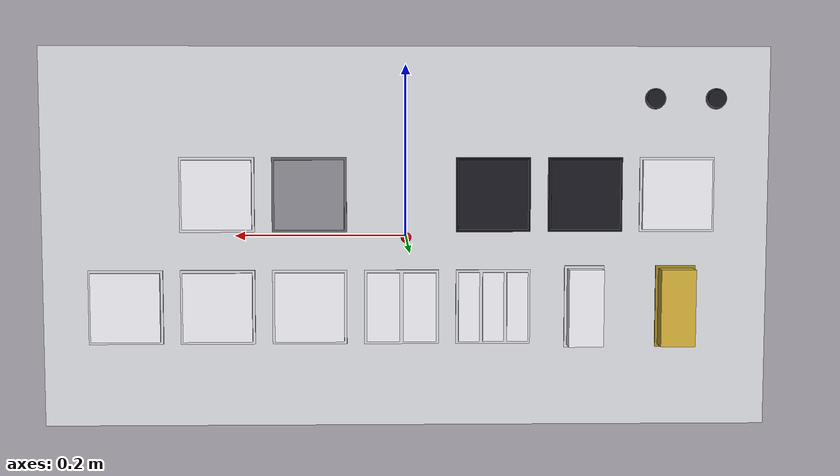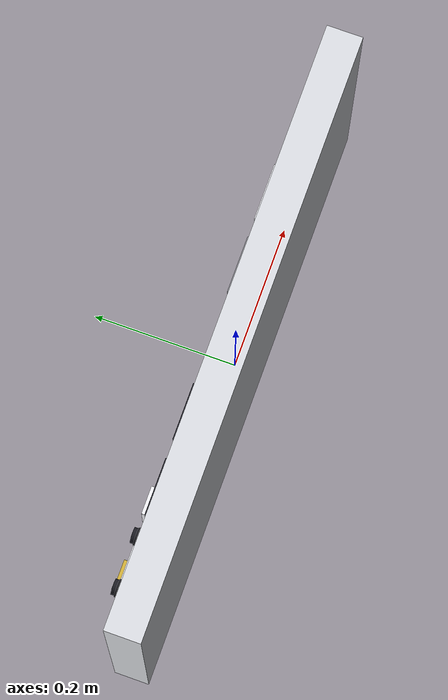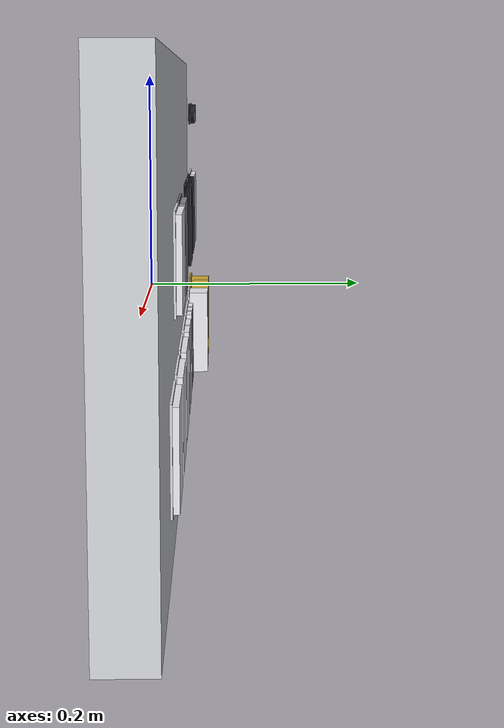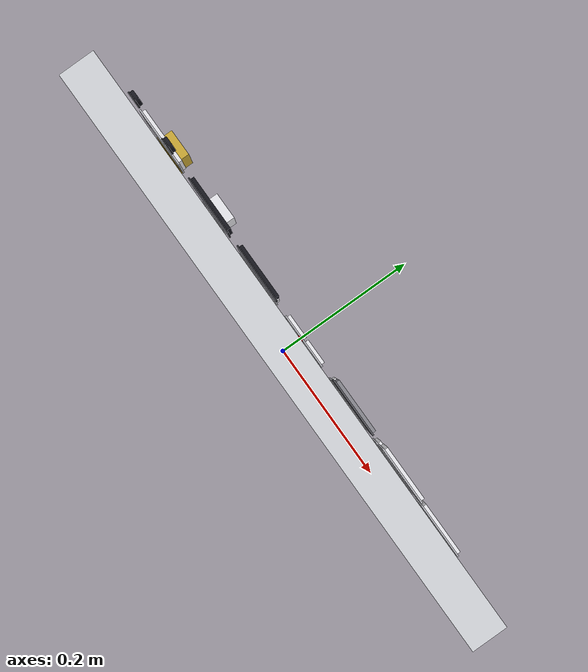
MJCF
<?xml version='1.0' encoding='utf-8'?>
<mujoco model="w2_b1_panel_base">
  <asset>
    <material name="Knob_Quantity1_02_base" rgba="0.05 0.05 0.07 1" specular="0.7" shininess="0.8" />
    <material name="Knob_Quantity1_02_button" rgba="0.10 0.10 0.13 1" specular="0.7" shininess="0.8" />
    <material name="Knob_Quantity1_01_base" rgba="0.05 0.05 0.07 1" specular="0.7" shininess="0.8" />
    <material name="Knob_Quantity1_01_button" rgba="0.10 0.10 0.13 1" specular="0.7" shininess="0.8" />
    <material name="Toogle_Quantity1_01_bezel" rgba="0.85 0.85 0.88 1" specular="0.85" shininess="0.9" />
    <material name="Toogle_Quantity1_01_button" rgba="0.95 0.95 0.97 1" specular="0.85" shininess="0.9" />
    <material name="Toogle_Quantity1_02_bezel" rgba="0.40 0.40 0.43 1" specular="0.85" shininess="0.9" />
    <material name="Toogle_Quantity1_02_button" rgba="0.55 0.55 0.58 1" specular="0.85" shininess="0.9" />
    <material name="Toogle_Quantity1_03_bezel" rgba="0.05 0.05 0.07 1" specular="0.7" shininess="0.8" />
    <material name="Toogle_Quantity1_03_button" rgba="0.10 0.10 0.13 1" specular="0.7" shininess="0.8" />
    <material name="Toogle_Quantity3_01_bezel" rgba="0.05 0.05 0.07 1" specular="0.7" shininess="0.8" />
    <material name="Toogle_Quantity3_01_button" rgba="0.10 0.10 0.13 1" specular="0.7" shininess="0.8" />
    <material name="Switch_Quantity3_03_bezel" rgba="0.85 0.85 0.88 1" specular="0.85" shininess="0.9" />
    <material name="Switch_Quantity3_03_button" rgba="0.95 0.95 0.97 1" specular="0.85" shininess="0.9" />
    <material name="Switch_Quantity1_01_bezel" rgba="0.85 0.85 0.88 1" specular="0.85" shininess="0.9" />
    <material name="Switch_Quantity1_01_button" rgba="0.95 0.95 0.97 1" specular="0.85" shininess="0.9" />
    <material name="Switch_Quantity4_01_bezel" rgba="0.85 0.85 0.88 1" specular="0.85" shininess="0.9" />
    <material name="Switch_Quantity4_01_button" rgba="0.95 0.95 0.97 1" specular="0.85" shininess="0.9" />
    <material name="Switch_Quantity1_03_bezel" rgba="0.85 0.85 0.88 1" specular="0.85" shininess="0.9" />
    <material name="Switch_Quantity1_03_button" rgba="0.95 0.95 0.97 1" specular="0.85" shininess="0.9" />
    <material name="Switch_Quantity2_02_bezel" rgba="0.85 0.85 0.88 1" specular="0.85" shininess="0.9" />
    <material name="Switch_Quantity2_02_btn1" rgba="0.95 0.95 0.97 1" specular="0.85" shininess="0.9" />
    <material name="Switch_Quantity2_02_btn2" rgba="0.95 0.95 0.97 1" specular="0.85" shininess="0.9" />
    <material name="Switch_Quantity3_02_bezel" rgba="0.85 0.85 0.88 1" specular="0.85" shininess="0.9" />
    <material name="Switch_Quantity3_02_btn1" rgba="0.95 0.95 0.97 1" specular="0.85" shininess="0.9" />
    <material name="Switch_Quantity3_02_btn2" rgba="0.95 0.95 0.97 1" specular="0.85" shininess="0.9" />
    <material name="Switch_Quantity3_02_btn3" rgba="0.95 0.95 0.97 1" specular="0.85" shininess="0.9" />
    <material name="Switch_Quantity1_05_bezel" rgba="0.85 0.85 0.88 1" specular="0.85" shininess="0.9" />
    <material name="Switch_Quantity1_05_button" rgba="0.95 0.95 0.97 1" specular="0.85" shininess="0.9" />
    <material name="Switch_Quantity1_04_bezel" rgba="0.65 0.53 0.15 1" specular="0.9" shininess="0.95" />
    <material name="Switch_Quantity1_04_button" rgba="0.83 0.69 0.22 1" specular="0.9" shininess="0.95" />
  </asset>
  <worldbody>
    <body name="panel_mount" pos="0 0 0">
      <geom name="panel_backplate" type="box" pos="0 0 0" size="0.42 0.025 0.22" rgba="0.86 0.87 0.89 1" contype="1" conaffinity="1" />
      <site name="panel_origin" pos="0 0.025 0" size="0.006" rgba="1 0 0 1" />
      <body name="panel_slot_r1_c10" pos="-0.28650000000000003 0.03 0.16" quat="0.7071068 -0.7071068 0 0">
        <body name="Knob_Quantity1_02_r1_c10">
          <geom name="Knob_Quantity1_02_base__panel_slot_r1_c10" type="cylinder" pos="0 0 0.001" size="0.012 0.001" material="Knob_Quantity1_02_base" />
          <geom name="Knob_Quantity1_02_button__panel_slot_r1_c10" type="cylinder" pos="0 0 0.0035" size="0.0105 0.0035" material="Knob_Quantity1_02_button" />
        </body>
      </body>
      <body name="panel_slot_r1_c11" pos="-0.3565 0.03 0.16" quat="0.7071068 -0.7071068 0 0">
        <body name="Knob_Quantity1_01_r1_c11">
          <geom name="Knob_Quantity1_01_base__panel_slot_r1_c11" type="cylinder" pos="0 0 0.001" size="0.012 0.001" material="Knob_Quantity1_01_base" />
          <geom name="Knob_Quantity1_01_button__panel_slot_r1_c11" type="cylinder" pos="0 0 0.0035" size="0.0105 0.0035" material="Knob_Quantity1_01_button" />
        </body>
      </body>
      <body name="panel_slot_r2_c2" pos="0.2175 0.03 0.05" quat="0.7071068 -0.7071068 0 0">
        <body name="Toogle_Quantity1_01_r2_c2">
          <geom name="Toogle_Quantity1_01_bezel__panel_slot_r2_c2" type="box" pos="0 0 0.001" size="0.043 0.043 0.001" material="Toogle_Quantity1_01_bezel" />
          <geom name="Toogle_Quantity1_01_button__panel_slot_r2_c2" type="box" pos="0 0 0.0035" size="0.04 0.04 0.0035" material="Toogle_Quantity1_01_button" />
        </body>
      </body>
      <body name="panel_slot_r2_c3" pos="0.1115 0.03 0.05" quat="0.7071068 -0.7071068 0 0">
        <body name="Toogle_Quantity1_02_r2_c3">
          <geom name="Toogle_Quantity1_02_bezel__panel_slot_r2_c3" type="box" pos="0 0 0.001" size="0.043 0.043 0.001" material="Toogle_Quantity1_02_bezel" />
          <geom name="Toogle_Quantity1_02_button__panel_slot_r2_c3" type="box" pos="0 0 0.0035" size="0.04 0.04 0.0035" material="Toogle_Quantity1_02_button" />
        </body>
      </body>
      <body name="panel_slot_r2_c5" pos="-0.1005 0.03 0.05" quat="0.7071068 -0.7071068 0 0">
        <body name="Toogle_Quantity1_03_r2_c5">
          <geom name="Toogle_Quantity1_03_bezel__panel_slot_r2_c5" type="box" pos="0 0 0.001" size="0.043 0.043 0.001" material="Toogle_Quantity1_03_bezel" />
          <geom name="Toogle_Quantity1_03_button__panel_slot_r2_c5" type="box" pos="0 0 0.0035" size="0.04 0.04 0.0035" material="Toogle_Quantity1_03_button" />
        </body>
      </body>
      <body name="panel_slot_r2_c6" pos="-0.20650000000000002 0.03 0.05" quat="0.7071068 -0.7071068 0 0">
        <body name="Toogle_Quantity3_01_r2_c6">
          <geom name="Toogle_Quantity3_01_bezel__panel_slot_r2_c6" type="box" pos="0 0 0.001" size="0.043 0.043 0.001" material="Toogle_Quantity3_01_bezel" />
          <geom name="Toogle_Quantity3_01_button__panel_slot_r2_c6" type="box" pos="0 0 0.0035" size="0.04 0.04 0.0035" material="Toogle_Quantity3_01_button" />
        </body>
      </body>
      <body name="panel_slot_r2_c7" pos="-0.3125 0.03 0.05" quat="0.7071068 -0.7071068 0 0">
        <body name="Switch_Quantity3_03_r2_c7">
          <geom name="Switch_Quantity3_03_bezel__panel_slot_r2_c7" type="box" pos="0 0 0.001" size="0.043 0.043 0.001" material="Switch_Quantity3_03_bezel" />
          <geom name="Switch_Quantity3_03_button__panel_slot_r2_c7" type="box" pos="0 0 0.0035" size="0.04 0.04 0.0035" material="Switch_Quantity3_03_button" />
        </body>
      </body>
      <body name="panel_slot_r3_c1" pos="0.3235 0.03 -0.08" quat="0.7071068 -0.7071068 0 0">
        <body name="Switch_Quantity1_01_r3_c1">
          <geom name="Switch_Quantity1_01_bezel__panel_slot_r3_c1" type="box" pos="0 0 0.001" size="0.043 0.043 0.001" material="Switch_Quantity1_01_bezel" />
          <geom name="Switch_Quantity1_01_button__panel_slot_r3_c1" type="box" pos="0 0 0.0035" size="0.04 0.04 0.0035" material="Switch_Quantity1_01_button" />
        </body>
      </body>
      <body name="panel_slot_r3_c2" pos="0.2175 0.03 -0.08" quat="0.7071068 -0.7071068 0 0">
        <body name="Switch_Quantity4_01_r3_c2">
          <geom name="Switch_Quantity4_01_bezel__panel_slot_r3_c2" type="box" pos="0 0 0.001" size="0.043 0.043 0.001" material="Switch_Quantity4_01_bezel" />
          <geom name="Switch_Quantity4_01_button__panel_slot_r3_c2" type="box" pos="0 0 0.0035" size="0.04 0.04 0.0035" material="Switch_Quantity4_01_button" />
        </body>
      </body>
      <body name="panel_slot_r3_c3" pos="0.1115 0.03 -0.08" quat="0.7071068 -0.7071068 0 0">
        <body name="Switch_Quantity1_03_r3_c3">
          <geom name="Switch_Quantity1_03_bezel__panel_slot_r3_c3" type="box" pos="0 0 0.001" size="0.043 0.043 0.001" material="Switch_Quantity1_03_bezel" />
          <geom name="Switch_Quantity1_03_button__panel_slot_r3_c3" type="box" pos="0 0 0.0035" size="0.04 0.04 0.0035" material="Switch_Quantity1_03_button" />
        </body>
      </body>
      <body name="panel_slot_r3_c4" pos="0.0055 0.03 -0.08" quat="0.7071068 -0.7071068 0 0">
        <body name="Switch_Quantity2_02_r3_c4">
          <geom name="Switch_Quantity2_02_bezel__panel_slot_r3_c4" type="box" pos="0 0 0.001" size="0.043 0.043 0.001" material="Switch_Quantity2_02_bezel" />
          <geom name="Switch_Quantity2_02_btn1__panel_slot_r3_c4" type="box" pos="-0.021 0 0.0035" size="0.019 0.04 0.0035" material="Switch_Quantity2_02_btn1" />
          <geom name="Switch_Quantity2_02_btn2__panel_slot_r3_c4" type="box" pos="0.021 0 0.0035" size="0.019 0.04 0.0035" material="Switch_Quantity2_02_btn2" />
        </body>
      </body>
      <body name="panel_slot_r3_c5" pos="-0.1005 0.03 -0.08" quat="0.7071068 -0.7071068 0 0">
        <body name="Switch_Quantity3_02_r3_c5">
          <geom name="Switch_Quantity3_02_bezel__panel_slot_r3_c5" type="box" pos="0 0 0.001" size="0.043 0.043 0.001" material="Switch_Quantity3_02_bezel" />
          <geom name="Switch_Quantity3_02_btn1__panel_slot_r3_c5" type="box" pos="-0.028 0 0.0035" size="0.012 0.04 0.0035" material="Switch_Quantity3_02_btn1" />
          <geom name="Switch_Quantity3_02_btn2__panel_slot_r3_c5" type="box" pos="0 0 0.0035" size="0.012 0.04 0.0035" material="Switch_Quantity3_02_btn2" />
          <geom name="Switch_Quantity3_02_btn3__panel_slot_r3_c5" type="box" pos="0.028 0 0.0035" size="0.012 0.04 0.0035" material="Switch_Quantity3_02_btn3" />
        </body>
      </body>
      <body name="panel_slot_r3_c6" pos="-0.20650000000000002 0.03 -0.08" quat="0.7071068 -0.7071068 0 0">
        <body name="Switch_Quantity1_05_r3_c6">
          <geom name="Switch_Quantity1_05_bezel__panel_slot_r3_c6" type="box" pos="0 0 0.001" size="0.023 0.0475 0.001" material="Switch_Quantity1_05_bezel" />
          <geom name="Switch_Quantity1_05_button__panel_slot_r3_c6" type="box" pos="0 0 0.011" size="0.02 0.0445 0.011" material="Switch_Quantity1_05_button" />
        </body>
      </body>
      <body name="panel_slot_r3_c7" pos="-0.3125 0.03 -0.08" quat="0.7071068 -0.7071068 0 0">
        <body name="Switch_Quantity1_04_r3_c7">
          <geom name="Switch_Quantity1_04_bezel__panel_slot_r3_c7" type="box" pos="0 0 0.001" size="0.023 0.0475 0.001" material="Switch_Quantity1_04_bezel" />
          <geom name="Switch_Quantity1_04_button__panel_slot_r3_c7" type="box" pos="0 0 0.011" size="0.02 0.0445 0.011" material="Switch_Quantity1_04_button" />
        </body>
      </body>
    </body>
  </worldbody>
</mujoco>
